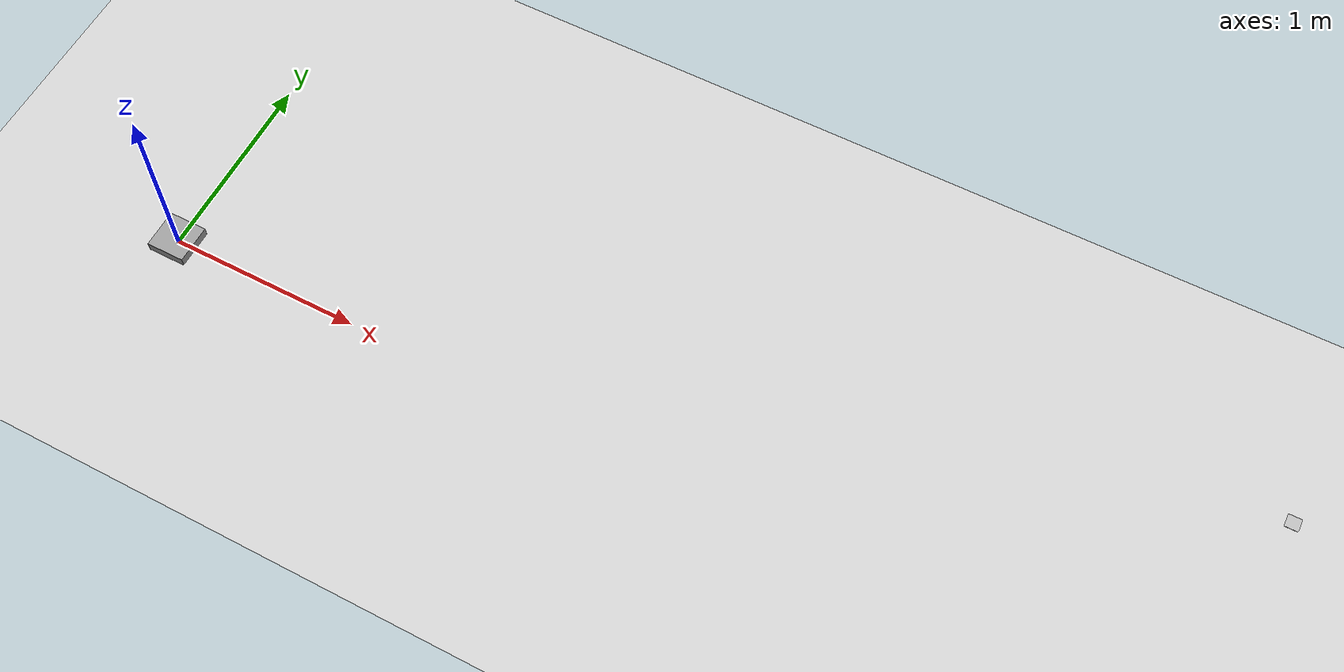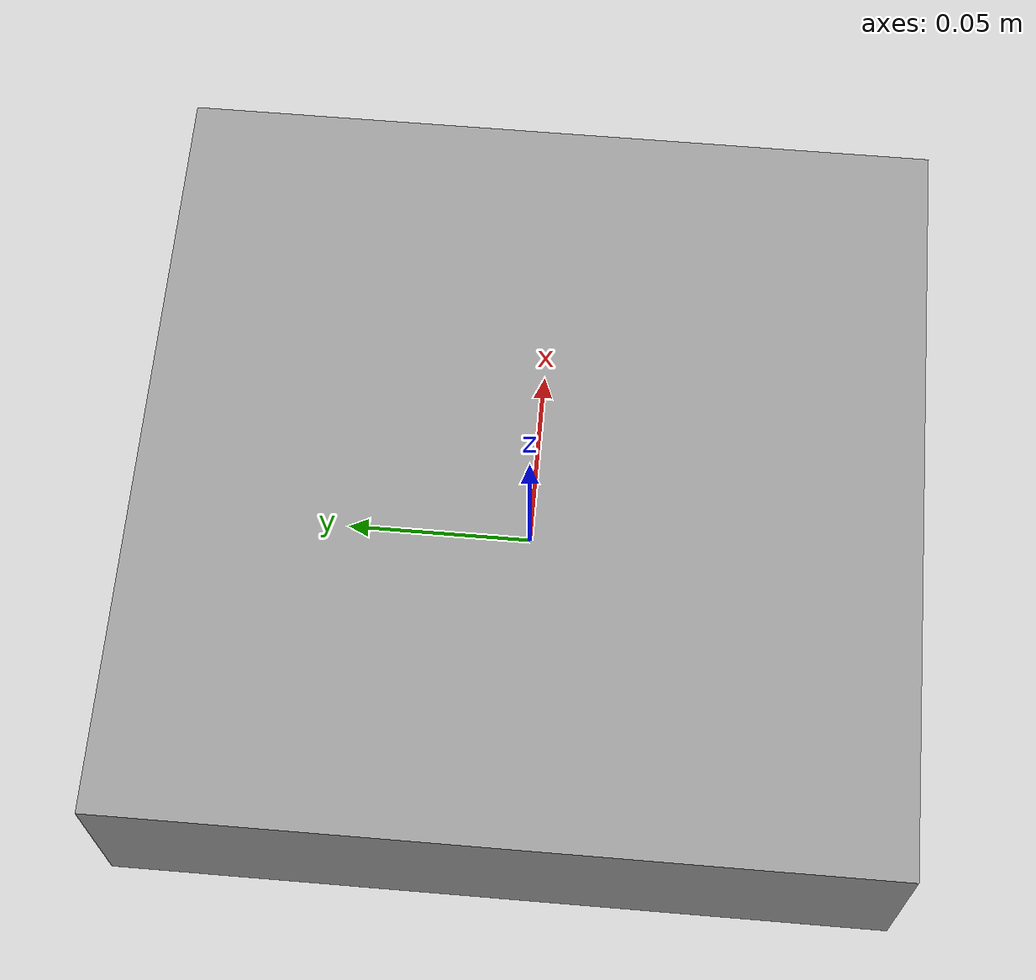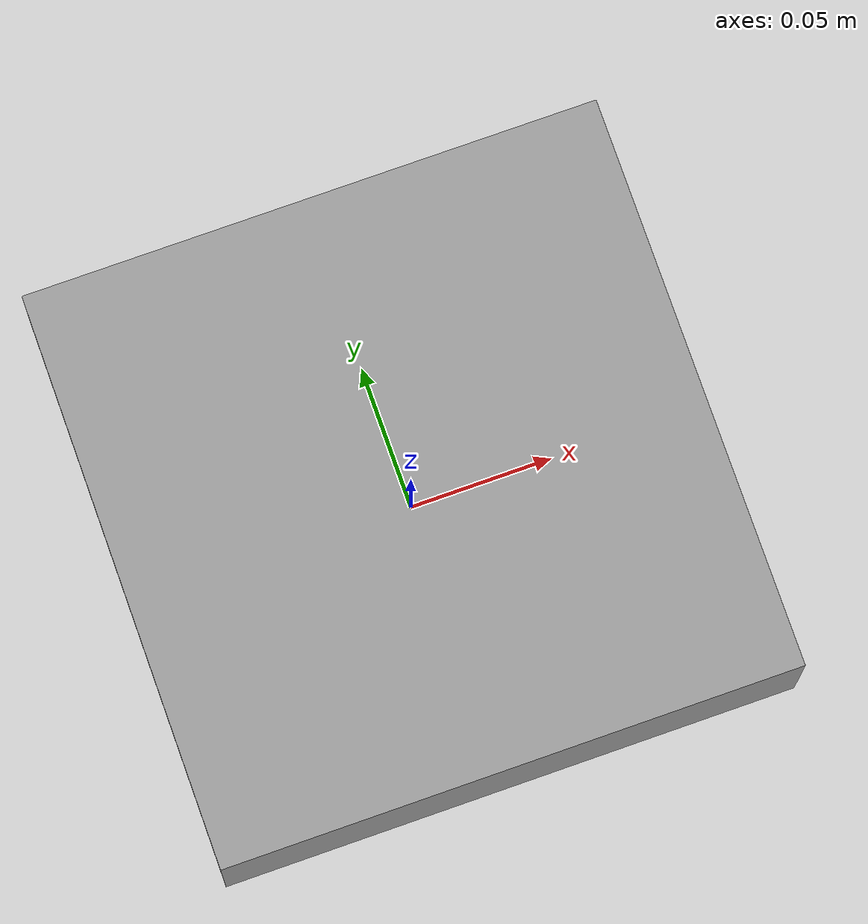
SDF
<?xml version="1.0" ?>
<sdf version="1.6">
  <world name="gimbal_sim">

    <!-- Set physics engine -->
    <physics name="default_physics" default="0" type="ode">
      <max_step_size>0.001</max_step_size>
      <real_time_factor>1.0</real_time_factor>
      <real_time_update_rate>1000</real_time_update_rate>
      <gravity>0 0 -9.81</gravity>
    </physics>

    <!-- Scene and rendering -->
    <scene>
      <ambient>0.4 0.4 0.4 1</ambient>
      <background>0.7 0.7 0.7 1</background>
      <shadows>true</shadows>
    </scene>

    <!-- Sun light -->
    <light name="sun" type="directional">
      <cast_shadows>true</cast_shadows>
      <pose>0 0 10 0 0 0</pose>
      <diffuse>0.8 0.8 0.8 1</diffuse>
      <specular>0.2 0.2 0.2 1</specular>
      <attenuation>
        <range>1000</range>
        <constant>0.9</constant>
        <linear>0.01</linear>
        <quadratic>0.001</quadratic>
      </attenuation>
      <direction>-0.5 0.5 -1</direction>
    </light>

    <!-- Ground plane -->
    <model name="ground_plane">
      <static>true</static>
      <link name="link">
        <collision name="collision">
          <geometry>
            <plane>
              <normal>0 0 1</normal>
              <size>100 100</size>
            </plane>
          </geometry>
        </collision>
        <visual name="visual">
          <geometry>
            <plane>
              <normal>0 0 1</normal>
              <size>100 100</size>
            </plane>
          </geometry>
          <material>
            <script>
              <uri>file://media/materials/scripts/gazebo.material</uri>
              <name>Gazebo/Grey</name>
            </script>
          </material>
        </visual>
      </link>
    </model>

    <!-- Gimbal platform model -->
    <model name="gimbal_platform">
      <pose>0 0 0 0 0 0</pose>
      <include>
        <uri>model://gimbal_platform</uri>
      </include>
    </model>

    <!-- QR code target (initial position) -->
    <model name="qr_code_target">
      <pose>5 0 2 0 0 0</pose>
      <include>
        <uri>model://qr_code</uri>
      </include>
    </model>

  </world>
</sdf>

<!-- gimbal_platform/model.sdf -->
<sdf version="1.6">
  <model name="gimbal_platform">
    <static>true</static>
    <link name="base">
      <inertial>
        <mass>2.0</mass>
        <inertia>
          <ixx>0.05</ixx>
          <ixy>0.0</ixy>
          <ixz>0.0</ixz>
          <iyy>0.05</iyy>
          <iyz>0.0</iyz>
          <izz>0.08</izz>
        </inertia>
        <pose>0 0 0.025 0 0 0</pose>
      </inertial>

      <collision name="collision">
        <geometry>
          <box>
            <size>0.2 0.2 0.05</size>
          </box>
        </geometry>
        <pose>0 0 0.025 0 0 0</pose>
      </collision>

      <visual name="visual">
        <geometry>
          <box>
            <size>0.2 0.2 0.05</size>
          </box>
        </geometry>
        <pose>0 0 0.025 0 0 0</pose>
        <material>
          <script>
            <uri>file://media/materials/scripts/gazebo.material</uri>
            <name>Gazebo/Grey</name>
          </script>
        </material>
      </visual>
    </link>

  </model>
</sdf>

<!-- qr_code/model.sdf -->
<sdf version='1.7'>
  <model name='qr_code'>
    <link name='link_0'>
      <pose>0 0 0 0 0 0</pose>
      <visual name='visual'>
        <pose>0 0 0 0 0 0</pose>
        <geometry>
          <box>
            <size>0.05 0.05 0.001</size>  <!-- Increase size of the box -->
          </box>
        </geometry>
        <material>
          <lighting>1</lighting>
          <script>
            <uri>model://qr_code/materials/scripts</uri>
            <uri>model://qr_code/materials/textures</uri>
            <name>qr_code_content</name>
          </script>
          <shader type='pixel'/>
        </material>
        <transparency>0</transparency> <!-- Adjust transparency to check if it renders -->
        <cast_shadows>1</cast_shadows>
      </visual>
    </link>
    <static>1</static>
    <allow_auto_disable>1</allow_auto_disable>
  </model>
</sdf>
